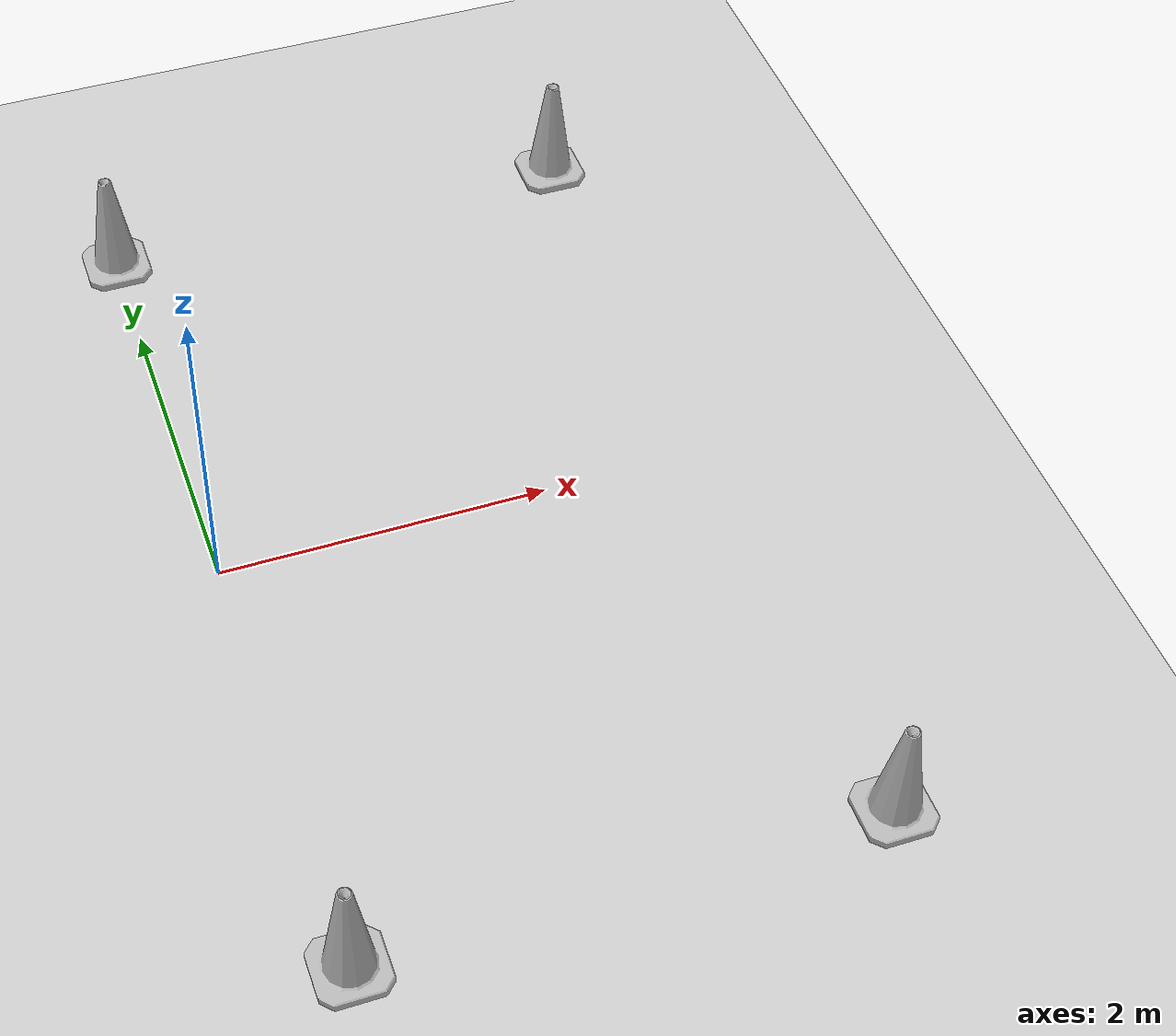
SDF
<sdf version="1.7">
 <world name="default">
  <model name="ground_plane">
   <static>1</static>
   <link name="link">
    <collision name="collision">
     <geometry><plane><normal>0 0 1</normal><size>100 100</size></plane></geometry>
     <surface>
      <contact><collide_bitmask>65535</collide_bitmask></contact>
      <friction><ode><mu>100</mu><mu2>50</mu2></ode></friction>
     </surface>
    </collision>
    <visual name="visual">
     <cast_shadows>0</cast_shadows>
     <geometry><plane><normal>0 0 1</normal><size>100 100</size></plane></geometry>
     <material>
      <script><uri>file://media/materials/scripts/gazebo.material</uri><name>Gazebo/Grey</name></script>
     </material>
    </visual>
   </link>
  </model>
  <model name="Construction_Cone_b">
   <link name="link">
    <inertial>
     <inertia><ixx>1</ixx><ixy>0</ixy><ixz>0</ixz><iyy>1</iyy><iyz>0</iyz><izz>1</izz></inertia>
     <mass>1</mass>
    </inertial>
    <visual name="visual">
     <geometry>
      <mesh><scale>8 8 6.7</scale><uri>./construction_cone/meshes/construction_cone_b.dae</uri></mesh>
     </geometry>
     <material><shader type="pixel"/></material>
    </visual>
    <collision name="collision">
     <geometry>
      <mesh><uri>./construction_cone/meshes/construction_cone_b.dae</uri><scale>8 8 6.7</scale></mesh>
     </geometry>
     <surface>
      <friction>
       <ode><mu>1</mu><mu2>1</mu2><fdir1>0 0 0</fdir1><slip1>0</slip1><slip2>0</slip2></ode>
       <torsional>
        <coefficient>1</coefficient>
        <patch_radius>0</patch_radius>
        <surface_radius>0</surface_radius>
        <use_patch_radius>1</use_patch_radius>
        <ode><slip>0</slip></ode>
       </torsional>
      </friction>
      <bounce><restitution_coefficient>0</restitution_coefficient><threshold>1e+06</threshold></bounce>
      <contact>
       <collide_without_contact>0</collide_without_contact>
       <collide_without_contact_bitmask>1</collide_without_contact_bitmask>
       <collide_bitmask>1</collide_bitmask>
       <ode>
        <soft_cfm>0</soft_cfm>
        <soft_erp>0.2</soft_erp>
        <kp>1e+13</kp>
        <kd>1</kd>
        <max_vel>0.01</max_vel>
        <min_depth>0</min_depth>
       </ode>
       <bullet>
        <split_impulse>1</split_impulse>
        <split_impulse_penetration_threshold>-0.01</split_impulse_penetration_threshold>
        <soft_cfm>0</soft_cfm>
        <soft_erp>0.2</soft_erp>
        <kp>1e+13</kp>
        <kd>1</kd>
       </bullet>
      </contact>
     </surface>
    </collision>
   </link>
   <static>0</static>
   <pose>-0.000553 -2.69808 -0 0 -0 0</pose>
  </model>
  <model name="Construction_Cone_b_0">
   <link name="link">
    <inertial>
     <inertia><ixx>1</ixx><ixy>0</ixy><ixz>0</ixz><iyy>1</iyy><iyz>0</iyz><izz>1</izz></inertia>
     <mass>1</mass>
    </inertial>
    <visual name="visual">
     <geometry>
      <mesh><scale>8 8 6.7</scale><uri>./construction_cone/meshes/construction_cone_b.dae</uri></mesh>
     </geometry>
     <material><shader type="pixel"/></material>
    </visual>
    <collision name="collision">
     <geometry>
      <mesh><uri>./construction_cone/meshes/construction_cone_b.dae</uri><scale>8 8 6.7</scale></mesh>
     </geometry>
     <surface>
      <friction>
       <ode><mu>1</mu><mu2>1</mu2><fdir1>0 0 0</fdir1><slip1>0</slip1><slip2>0</slip2></ode>
       <torsional>
        <coefficient>1</coefficient>
        <patch_radius>0</patch_radius>
        <surface_radius>0</surface_radius>
        <use_patch_radius>1</use_patch_radius>
        <ode><slip>0</slip></ode>
       </torsional>
      </friction>
      <bounce><restitution_coefficient>0</restitution_coefficient><threshold>1e+06</threshold></bounce>
      <contact>
       <collide_without_contact>0</collide_without_contact>
       <collide_without_contact_bitmask>1</collide_without_contact_bitmask>
       <collide_bitmask>1</collide_bitmask>
       <ode>
        <soft_cfm>0</soft_cfm>
        <soft_erp>0.2</soft_erp>
        <kp>1e+13</kp>
        <kd>1</kd>
        <max_vel>0.01</max_vel>
        <min_depth>0</min_depth>
       </ode>
       <bullet>
        <split_impulse>1</split_impulse>
        <split_impulse_penetration_threshold>-0.01</split_impulse_penetration_threshold>
        <soft_cfm>0</soft_cfm>
        <soft_erp>0.2</soft_erp>
        <kp>1e+13</kp>
        <kd>1</kd>
       </bullet>
      </contact>
     </surface>
    </collision>
   </link>
   <static>0</static>
   <pose>2.99991 -2.70181 -0 0 -0 0</pose>
  </model>
  <model name="Construction_Cone_y">
   <link name="link">
    <inertial>
     <inertia><ixx>1</ixx><ixy>0</ixy><ixz>0</ixz><iyy>1</iyy><iyz>0</iyz><izz>1</izz></inertia>
     <mass>1</mass>
    </inertial>
    <visual name="visual">
     <geometry>
      <mesh><scale>8 8 6.7</scale><uri>./construction_cone/meshes/construction_cone_y.dae</uri></mesh>
     </geometry>
     <material><shader type="pixel"/></material>
    </visual>
    <collision name="collision">
     <geometry>
      <mesh><uri>./construction_cone/meshes/construction_cone_y.dae</uri><scale>8 8 6.7</scale></mesh>
     </geometry>
     <surface>
      <friction>
       <ode><mu>1</mu><mu2>1</mu2><fdir1>0 0 0</fdir1><slip1>0</slip1><slip2>0</slip2></ode>
       <torsional>
        <coefficient>1</coefficient>
        <patch_radius>0</patch_radius>
        <surface_radius>0</surface_radius>
        <use_patch_radius>1</use_patch_radius>
        <ode><slip>0</slip></ode>
       </torsional>
      </friction>
      <bounce><restitution_coefficient>0</restitution_coefficient><threshold>1e+06</threshold></bounce>
      <contact>
       <collide_without_contact>0</collide_without_contact>
       <collide_without_contact_bitmask>1</collide_without_contact_bitmask>
       <collide_bitmask>1</collide_bitmask>
       <ode>
        <soft_cfm>0</soft_cfm>
        <soft_erp>0.2</soft_erp>
        <kp>1e+13</kp>
        <kd>1</kd>
        <max_vel>0.01</max_vel>
        <min_depth>0</min_depth>
       </ode>
       <bullet>
        <split_impulse>1</split_impulse>
        <split_impulse_penetration_threshold>-0.01</split_impulse_penetration_threshold>
        <soft_cfm>0</soft_cfm>
        <soft_erp>0.2</soft_erp>
        <kp>1e+13</kp>
        <kd>1</kd>
       </bullet>
      </contact>
     </surface>
    </collision>
   </link>
   <static>0</static>
   <pose>0.003062 2.70313 -0 0 -0 0</pose>
  </model>
  <model name="Construction_Cone_y_0">
   <link name="link">
    <inertial>
     <inertia><ixx>1</ixx><ixy>0</ixy><ixz>0</ixz><iyy>1</iyy><iyz>0</iyz><izz>1</izz></inertia>
     <mass>1</mass>
    </inertial>
    <visual name="visual">
     <geometry>
      <mesh><scale>8 8 6.7</scale><uri>./construction_cone/meshes/construction_cone_y.dae</uri></mesh>
     </geometry>
     <material><shader type="pixel"/></material>
    </visual>
    <collision name="collision">
     <geometry>
      <mesh><uri>./construction_cone/meshes/construction_cone_y.dae</uri><scale>8 8 6.7</scale></mesh>
     </geometry>
     <surface>
      <friction>
       <ode><mu>1</mu><mu2>1</mu2><fdir1>0 0 0</fdir1><slip1>0</slip1><slip2>0</slip2></ode>
       <torsional>
        <coefficient>1</coefficient>
        <patch_radius>0</patch_radius>
        <surface_radius>0</surface_radius>
        <use_patch_radius>1</use_patch_radius>
        <ode><slip>0</slip></ode>
       </torsional>
      </friction>
      <bounce><restitution_coefficient>0</restitution_coefficient><threshold>1e+06</threshold></bounce>
      <contact>
       <collide_without_contact>0</collide_without_contact>
       <collide_without_contact_bitmask>1</collide_without_contact_bitmask>
       <collide_bitmask>1</collide_bitmask>
       <ode>
        <soft_cfm>0</soft_cfm>
        <soft_erp>0.2</soft_erp>
        <kp>1e+13</kp>
        <kd>1</kd>
        <max_vel>0.01</max_vel>
        <min_depth>0</min_depth>
       </ode>
       <bullet>
        <split_impulse>1</split_impulse>
        <split_impulse_penetration_threshold>-0.01</split_impulse_penetration_threshold>
        <soft_cfm>0</soft_cfm>
        <soft_erp>0.2</soft_erp>
        <kp>1e+13</kp>
        <kd>1</kd>
       </bullet>
      </contact>
     </surface>
    </collision>
   </link>
   <static>0</static>
   <pose>3.00134 2.70089 -0 0 -0 0</pose>
  </model>
 </world>
</sdf>
